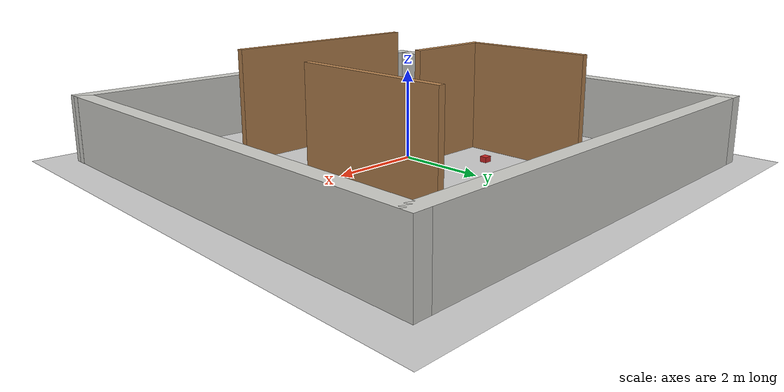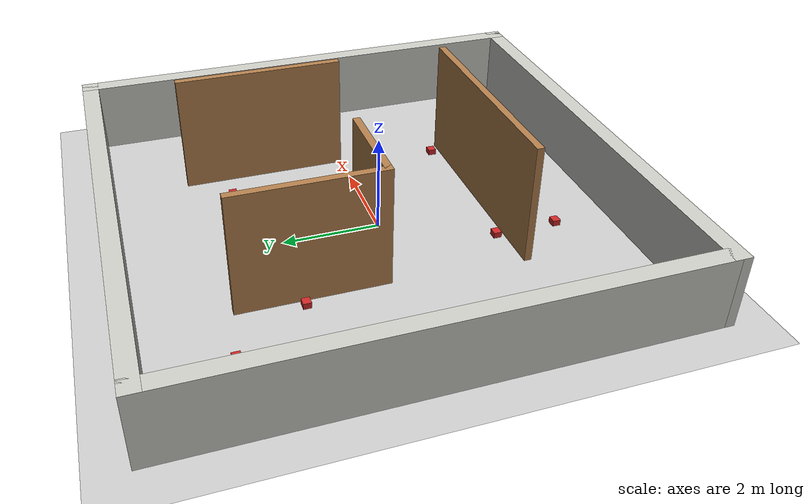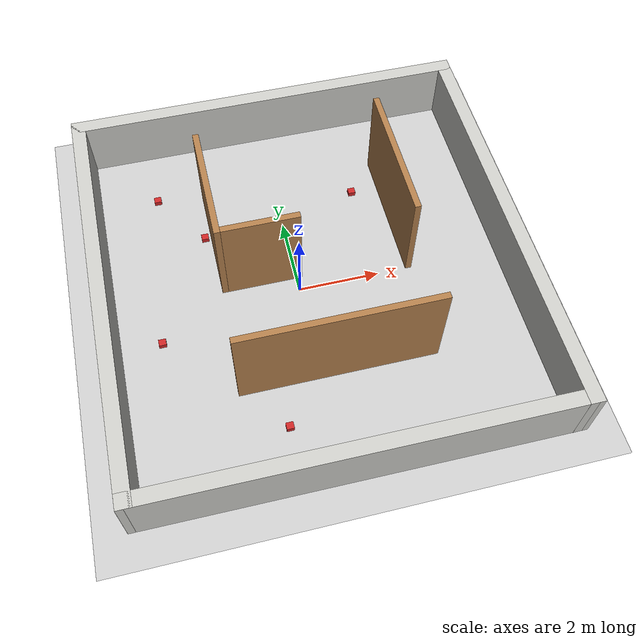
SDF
<sdf version="1.7">
 <world name="default">
  <light name="sun" type="directional">
   <cast_shadows>0</cast_shadows>
   <pose>0 0 10 0 -0 0</pose>
   <diffuse>0.8 0.8 0.8 1</diffuse>
   <specular>0.2 0.2 0.2 1</specular>
   <attenuation>
    <range>1000</range>
    <constant>0.9</constant>
    <linear>0.01</linear>
    <quadratic>0.001</quadratic>
   </attenuation>
   <direction>-0.5 0.1 -0.9</direction>
   <spot><inner_angle>0</inner_angle><outer_angle>0</outer_angle><falloff>0</falloff></spot>
  </light>
  <model name="ground_plane">
   <static>1</static>
   <link name="link">
    <collision name="collision">
     <geometry><plane><normal>0 0 1</normal><size>100 100</size></plane></geometry>
     <surface><friction><ode><mu>100</mu><mu2>50</mu2></ode></friction></surface>
    </collision>
    <visual name="visual">
     <cast_shadows>0</cast_shadows>
     <geometry><plane><normal>0 0 1</normal><size>100 100</size></plane></geometry>
     <material>
      <script><uri>file://media/materials/scripts/gazebo.material</uri><name>Gazebo/Grey</name></script>
     </material>
    </visual>
   </link>
  </model>
  <gravity>0 0 -9.8</gravity>
  <scene><ambient>0.4 0.4 0.4 1</ambient><background>0.7 0.7 0.7 1</background><shadows>1</shadows></scene>
  <magnetic_field>6e-06 2.3e-05 -4.2e-05</magnetic_field>
  <atmosphere type="adiabatic"/>
  <physics type="ode">
   <max_step_size>0.001</max_step_size>
   <real_time_factor>1</real_time_factor>
   <real_time_update_rate>1000</real_time_update_rate>
  </physics>
  <audio><device>default</device></audio>
  <spherical_coordinates>
   <surface_model>EARTH_WGS84</surface_model>
   <latitude_deg>0</latitude_deg>
   <longitude_deg>0</longitude_deg>
   <elevation>0</elevation>
   <heading_deg>0</heading_deg>
  </spherical_coordinates>
  <model name="unit_box_1_clone_0">
   <link name="link">
    <inertial>
     <mass>1</mass>
     <inertia>
      <ixx>0.166667</ixx>
      <ixy>0</ixy>
      <ixz>0</ixz>
      <iyy>0.166667</iyy>
      <iyz>0</iyz>
      <izz>0.166667</izz>
     </inertia>
    </inertial>
    <visual name="visual">
     <geometry><box><size>0.177426 0.164052 0.124949</size></box></geometry>
     <material>
      <script><name>Gazebo/Red</name><uri>file://media/materials/scripts/gazebo.material</uri></script>
      <shader type="pixel"><normal_map>__default__</normal_map></shader>
      <ambient>1 0 0 1</ambient>
      <diffuse>1 0 0 1</diffuse>
      <specular>0.1 0.1 0.1 1</specular>
      <emissive>0 0 0 1</emissive>
     </material>
    </visual>
    <collision name="collision">
     <geometry><box><size>0.177426 0.164052 0.124949</size></box></geometry>
     <surface>
      <friction>
       <ode><mu>1</mu><mu2>1</mu2><fdir1>0 0 0</fdir1><slip1>0</slip1><slip2>0</slip2></ode>
       <torsional>
        <coefficient>1</coefficient>
        <patch_radius>0</patch_radius>
        <surface_radius>0</surface_radius>
        <use_patch_radius>1</use_patch_radius>
        <ode><slip>0</slip></ode>
       </torsional>
      </friction>
      <bounce><restitution_coefficient>0</restitution_coefficient><threshold>1e+06</threshold></bounce>
      <contact>
       <collide_without_contact>0</collide_without_contact>
       <collide_without_contact_bitmask>1</collide_without_contact_bitmask>
       <collide_bitmask>1</collide_bitmask>
       <ode>
        <soft_cfm>0</soft_cfm>
        <soft_erp>0.2</soft_erp>
        <kp>1e+13</kp>
        <kd>1</kd>
        <max_vel>0.01</max_vel>
        <min_depth>0</min_depth>
       </ode>
       <bullet>
        <split_impulse>1</split_impulse>
        <split_impulse_penetration_threshold>-0.01</split_impulse_penetration_threshold>
        <soft_cfm>0</soft_cfm>
        <soft_erp>0.2</soft_erp>
        <kp>1e+13</kp>
        <kd>1</kd>
       </bullet>
      </contact>
     </surface>
    </collision>
   </link>
   <static>0</static>
   <pose>-0.975202 1.46797 0.062474 -2e-06 3e-06 -7e-06</pose>
  </model>
  <model name="unit_box_1">
   <link name="link">
    <inertial>
     <mass>1</mass>
     <inertia>
      <ixx>0.166667</ixx>
      <ixy>0</ixy>
      <ixz>0</ixz>
      <iyy>0.166667</iyy>
      <iyz>0</iyz>
      <izz>0.166667</izz>
     </inertia>
    </inertial>
    <visual name="visual">
     <geometry><box><size>0.177426 0.164052 0.124949</size></box></geometry>
     <material>
      <script><name>Gazebo/Red</name><uri>file://media/materials/scripts/gazebo.material</uri></script>
      <shader type="pixel"><normal_map>__default__</normal_map></shader>
      <ambient>0 1 0 1</ambient>
      <diffuse>0 1 0 1</diffuse>
      <specular>0.1 0.1 0.1 1</specular>
      <emissive>0 0 0 1</emissive>
     </material>
    </visual>
    <collision name="collision">
     <geometry><box><size>0.177426 0.164052 0.124949</size></box></geometry>
     <surface>
      <friction>
       <ode><mu>1</mu><mu2>1</mu2><fdir1>0 0 0</fdir1><slip1>0</slip1><slip2>0</slip2></ode>
       <torsional>
        <coefficient>1</coefficient>
        <patch_radius>0</patch_radius>
        <surface_radius>0</surface_radius>
        <use_patch_radius>1</use_patch_radius>
        <ode><slip>0</slip></ode>
       </torsional>
      </friction>
      <bounce><restitution_coefficient>0</restitution_coefficient><threshold>1e+06</threshold></bounce>
      <contact>
       <collide_without_contact>0</collide_without_contact>
       <collide_without_contact_bitmask>1</collide_without_contact_bitmask>
       <collide_bitmask>1</collide_bitmask>
       <ode>
        <soft_cfm>0</soft_cfm>
        <soft_erp>0.2</soft_erp>
        <kp>1e+13</kp>
        <kd>1</kd>
        <max_vel>0.01</max_vel>
        <min_depth>0</min_depth>
       </ode>
       <bullet>
        <split_impulse>1</split_impulse>
        <split_impulse_penetration_threshold>-0.01</split_impulse_penetration_threshold>
        <soft_cfm>0</soft_cfm>
        <soft_erp>0.2</soft_erp>
        <kp>1e+13</kp>
        <kd>1</kd>
       </bullet>
      </contact>
     </surface>
    </collision>
   </link>
   <static>0</static>
   <pose>-1.05333 -2.16164 0.062475 -4e-06 -1e-06 -2e-06</pose>
  </model>
  <model name="unit_box_1_clone_1_clone">
   <link name="link">
    <inertial>
     <mass>1</mass>
     <inertia>
      <ixx>0.166667</ixx>
      <ixy>0</ixy>
      <ixz>0</ixz>
      <iyy>0.166667</iyy>
      <iyz>0</iyz>
      <izz>0.166667</izz>
     </inertia>
    </inertial>
    <visual name="visual">
     <geometry><box><size>0.177426 0.164052 0.124949</size></box></geometry>
     <material>
      <script><name>Gazebo/Red</name><uri>file://media/materials/scripts/gazebo.material</uri></script>
      <shader type="pixel"><normal_map>__default__</normal_map></shader>
      <ambient>1 0 0 1</ambient>
      <diffuse>1 0 0 1</diffuse>
      <specular>0.1 0.1 0.1 1</specular>
      <emissive>0 0 0 1</emissive>
     </material>
    </visual>
    <collision name="collision">
     <geometry><box><size>0.177426 0.164052 0.124949</size></box></geometry>
     <surface>
      <friction>
       <ode><mu>1</mu><mu2>1</mu2><fdir1>0 0 0</fdir1><slip1>0</slip1><slip2>0</slip2></ode>
       <torsional>
        <coefficient>1</coefficient>
        <patch_radius>0</patch_radius>
        <surface_radius>0</surface_radius>
        <use_patch_radius>1</use_patch_radius>
        <ode><slip>0</slip></ode>
       </torsional>
      </friction>
      <bounce><restitution_coefficient>0</restitution_coefficient><threshold>1e+06</threshold></bounce>
      <contact>
       <collide_without_contact>0</collide_without_contact>
       <collide_without_contact_bitmask>1</collide_without_contact_bitmask>
       <collide_bitmask>1</collide_bitmask>
       <ode>
        <soft_cfm>0</soft_cfm>
        <soft_erp>0.2</soft_erp>
        <kp>1e+13</kp>
        <kd>1</kd>
        <max_vel>0.01</max_vel>
        <min_depth>0</min_depth>
       </ode>
       <bullet>
        <split_impulse>1</split_impulse>
        <split_impulse_penetration_threshold>-0.01</split_impulse_penetration_threshold>
        <soft_cfm>0</soft_cfm>
        <soft_erp>0.2</soft_erp>
        <kp>1e+13</kp>
        <kd>1</kd>
       </bullet>
      </contact>
     </surface>
    </collision>
   </link>
   <static>0</static>
   <pose>-3.49916 -0.751851 0.062475 -4e-06 -0 0.003677</pose>
  </model>
  <model name="unit_box_1_clone_1_clone_0">
   <link name="link">
    <inertial>
     <mass>1</mass>
     <inertia>
      <ixx>0.166667</ixx>
      <ixy>0</ixy>
      <ixz>0</ixz>
      <iyy>0.166667</iyy>
      <iyz>0</iyz>
      <izz>0.166667</izz>
     </inertia>
    </inertial>
    <visual name="visual">
     <geometry><box><size>0.177426 0.164052 0.124949</size></box></geometry>
     <material>
      <script><name>Gazebo/Red</name><uri>file://media/materials/scripts/gazebo.material</uri></script>
      <shader type="pixel"><normal_map>__default__</normal_map></shader>
      <ambient>1 0 0 1</ambient>
      <diffuse>1 0 0 1</diffuse>
      <specular>0.1 0.1 0.1 1</specular>
      <emissive>0 0 0 1</emissive>
     </material>
    </visual>
    <collision name="collision">
     <geometry><box><size>0.177426 0.164052 0.124949</size></box></geometry>
     <surface>
      <friction>
       <ode><mu>1</mu><mu2>1</mu2><fdir1>0 0 0</fdir1><slip1>0</slip1><slip2>0</slip2></ode>
       <torsional>
        <coefficient>1</coefficient>
        <patch_radius>0</patch_radius>
        <surface_radius>0</surface_radius>
        <use_patch_radius>1</use_patch_radius>
        <ode><slip>0</slip></ode>
       </torsional>
      </friction>
      <bounce><restitution_coefficient>0</restitution_coefficient><threshold>1e+06</threshold></bounce>
      <contact>
       <collide_without_contact>0</collide_without_contact>
       <collide_without_contact_bitmask>1</collide_without_contact_bitmask>
       <collide_bitmask>1</collide_bitmask>
       <ode>
        <soft_cfm>0</soft_cfm>
        <soft_erp>0.2</soft_erp>
        <kp>1e+13</kp>
        <kd>1</kd>
        <max_vel>0.01</max_vel>
        <min_depth>0</min_depth>
       </ode>
       <bullet>
        <split_impulse>1</split_impulse>
        <split_impulse_penetration_threshold>-0.01</split_impulse_penetration_threshold>
        <soft_cfm>0</soft_cfm>
        <soft_erp>0.2</soft_erp>
        <kp>1e+13</kp>
        <kd>1</kd>
       </bullet>
      </contact>
     </surface>
    </collision>
   </link>
   <static>0</static>
   <pose>3.55942 2.01655 0.062474 3e-06 -3e-06 -1.8e-05</pose>
  </model>
  <model name="Green1">
   <link name="link">
    <inertial>
     <mass>1</mass>
     <inertia>
      <ixx>0.166667</ixx>
      <ixy>0</ixy>
      <ixz>0</ixz>
      <iyy>0.166667</iyy>
      <iyz>0</iyz>
      <izz>0.166667</izz>
     </inertia>
    </inertial>
    <visual name="visual">
     <geometry><box><size>0.177426 0.164052 0.124949</size></box></geometry>
     <material>
      <script><name>Gazebo/Red</name><uri>file://media/materials/scripts/gazebo.material</uri></script>
      <shader type="pixel"><normal_map>__default__</normal_map></shader>
      <ambient>0 1 0 1</ambient>
      <diffuse>0 1 0 1</diffuse>
      <specular>0.1 0.1 0.1 1</specular>
      <emissive>0 0 0 1</emissive>
     </material>
    </visual>
    <collision name="collision">
     <geometry><box><size>0.177426 0.164052 0.124949</size></box></geometry>
     <surface>
      <friction>
       <ode><mu>1</mu><mu2>1</mu2><fdir1>0 0 0</fdir1><slip1>0</slip1><slip2>0</slip2></ode>
       <torsional>
        <coefficient>1</coefficient>
        <patch_radius>0</patch_radius>
        <surface_radius>0</surface_radius>
        <use_patch_radius>1</use_patch_radius>
        <ode><slip>0</slip></ode>
       </torsional>
      </friction>
      <bounce><restitution_coefficient>0</restitution_coefficient><threshold>1e+06</threshold></bounce>
      <contact>
       <collide_without_contact>0</collide_without_contact>
       <collide_without_contact_bitmask>1</collide_without_contact_bitmask>
       <collide_bitmask>1</collide_bitmask>
       <ode>
        <soft_cfm>0</soft_cfm>
        <soft_erp>0.2</soft_erp>
        <kp>1e+13</kp>
        <kd>1</kd>
        <max_vel>0.01</max_vel>
        <min_depth>0</min_depth>
       </ode>
       <bullet>
        <split_impulse>1</split_impulse>
        <split_impulse_penetration_threshold>-0.01</split_impulse_penetration_threshold>
        <soft_cfm>0</soft_cfm>
        <soft_erp>0.2</soft_erp>
        <kp>1e+13</kp>
        <kd>1</kd>
       </bullet>
      </contact>
     </surface>
    </collision>
   </link>
   <static>0</static>
   <pose>2.00941 2.62639 0.062474 2e-06 4e-06 2e-06</pose>
  </model>
  <model name="blue_box">
   <link name="link">
    <inertial>
     <mass>1</mass>
     <inertia>
      <ixx>0.166667</ixx>
      <ixy>0</ixy>
      <ixz>0</ixz>
      <iyy>0.166667</iyy>
      <iyz>0</iyz>
      <izz>0.166667</izz>
     </inertia>
    </inertial>
    <visual name="visual">
     <geometry><box><size>0.177426 0.164052 0.124949</size></box></geometry>
     <material>
      <script><name>Gazebo/Red</name><uri>file://media/materials/scripts/gazebo.material</uri></script>
      <shader type="pixel"><normal_map>__default__</normal_map></shader>
      <ambient>0 0 1 1</ambient>
      <diffuse>0 0 1 1</diffuse>
      <specular>0.1 0.1 0.1 1</specular>
      <emissive>0 0 0 1</emissive>
     </material>
    </visual>
    <collision name="collision">
     <geometry><box><size>0.177426 0.164052 0.124949</size></box></geometry>
     <surface>
      <friction>
       <ode><mu>1</mu><mu2>1</mu2><fdir1>0 0 0</fdir1><slip1>0</slip1><slip2>0</slip2></ode>
       <torsional>
        <coefficient>1</coefficient>
        <patch_radius>0</patch_radius>
        <surface_radius>0</surface_radius>
        <use_patch_radius>1</use_patch_radius>
        <ode><slip>0</slip></ode>
       </torsional>
      </friction>
      <bounce><restitution_coefficient>0</restitution_coefficient><threshold>1e+06</threshold></bounce>
      <contact>
       <collide_without_contact>0</collide_without_contact>
       <collide_without_contact_bitmask>1</collide_without_contact_bitmask>
       <collide_bitmask>1</collide_bitmask>
       <ode>
        <soft_cfm>0</soft_cfm>
        <soft_erp>0.2</soft_erp>
        <kp>1e+13</kp>
        <kd>1</kd>
        <max_vel>0.01</max_vel>
        <min_depth>0</min_depth>
       </ode>
       <bullet>
        <split_impulse>1</split_impulse>
        <split_impulse_penetration_threshold>-0.01</split_impulse_penetration_threshold>
        <soft_cfm>0</soft_cfm>
        <soft_erp>0.2</soft_erp>
        <kp>1e+13</kp>
        <kd>1</kd>
       </bullet>
      </contact>
     </surface>
    </collision>
   </link>
   <static>0</static>
   <pose>-3.02591 3.50357 0.062474 5e-06 1e-06 -1.4e-05</pose>
  </model>
  <model name="Green1_clone">
   <link name="link">
    <inertial>
     <mass>1</mass>
     <inertia>
      <ixx>0.166667</ixx>
      <ixy>0</ixy>
      <ixz>0</ixz>
      <iyy>0.166667</iyy>
      <iyz>0</iyz>
      <izz>0.166667</izz>
     </inertia>
    </inertial>
    <visual name="visual">
     <geometry><box><size>0.177426 0.164052 0.124949</size></box></geometry>
     <material>
      <script><name>Gazebo/Red</name><uri>file://media/materials/scripts/gazebo.material</uri></script>
      <shader type="pixel"><normal_map>__default__</normal_map></shader>
      <ambient>0 1 0 1</ambient>
      <diffuse>0 1 0 1</diffuse>
      <specular>0.1 0.1 0.1 1</specular>
      <emissive>0 0 0 1</emissive>
     </material>
    </visual>
    <collision name="collision">
     <geometry><box><size>0.177426 0.164052 0.124949</size></box></geometry>
     <surface>
      <friction>
       <ode><mu>1</mu><mu2>1</mu2><fdir1>0 0 0</fdir1><slip1>0</slip1><slip2>0</slip2></ode>
       <torsional>
        <coefficient>1</coefficient>
        <patch_radius>0</patch_radius>
        <surface_radius>0</surface_radius>
        <use_patch_radius>1</use_patch_radius>
        <ode><slip>0</slip></ode>
       </torsional>
      </friction>
      <bounce><restitution_coefficient>0</restitution_coefficient><threshold>1e+06</threshold></bounce>
      <contact>
       <collide_without_contact>0</collide_without_contact>
       <collide_without_contact_bitmask>1</collide_without_contact_bitmask>
       <collide_bitmask>1</collide_bitmask>
       <ode>
        <soft_cfm>0</soft_cfm>
        <soft_erp>0.2</soft_erp>
        <kp>1e+13</kp>
        <kd>1</kd>
        <max_vel>0.01</max_vel>
        <min_depth>0</min_depth>
       </ode>
       <bullet>
        <split_impulse>1</split_impulse>
        <split_impulse_penetration_threshold>-0.01</split_impulse_penetration_threshold>
        <soft_cfm>0</soft_cfm>
        <soft_erp>0.2</soft_erp>
        <kp>1e+13</kp>
        <kd>1</kd>
       </bullet>
      </contact>
     </surface>
    </collision>
   </link>
   <static>0</static>
   <pose>-2.01435 2.03828 0.062474 -2e-06 4e-06 -1.7e-05</pose>
  </model>
  <model name="blue_box_clone">
   <link name="link">
    <inertial>
     <mass>1</mass>
     <inertia>
      <ixx>0.166667</ixx>
      <ixy>0</ixy>
      <ixz>0</ixz>
      <iyy>0.166667</iyy>
      <iyz>0</iyz>
      <izz>0.166667</izz>
     </inertia>
    </inertial>
    <visual name="visual">
     <geometry><box><size>0.177426 0.164052 0.124949</size></box></geometry>
     <material>
      <script><name>Gazebo/Red</name><uri>file://media/materials/scripts/gazebo.material</uri></script>
      <shader type="pixel"><normal_map>__default__</normal_map></shader>
      <ambient>0 0 1 1</ambient>
      <diffuse>0 0 1 1</diffuse>
      <specular>0.1 0.1 0.1 1</specular>
      <emissive>0 0 0 1</emissive>
     </material>
    </visual>
    <collision name="collision">
     <geometry><box><size>0.177426 0.164052 0.124949</size></box></geometry>
     <surface>
      <friction>
       <ode><mu>1</mu><mu2>1</mu2><fdir1>0 0 0</fdir1><slip1>0</slip1><slip2>0</slip2></ode>
       <torsional>
        <coefficient>1</coefficient>
        <patch_radius>0</patch_radius>
        <surface_radius>0</surface_radius>
        <use_patch_radius>1</use_patch_radius>
        <ode><slip>0</slip></ode>
       </torsional>
      </friction>
      <bounce><restitution_coefficient>0</restitution_coefficient><threshold>1e+06</threshold></bounce>
      <contact>
       <collide_without_contact>0</collide_without_contact>
       <collide_without_contact_bitmask>1</collide_without_contact_bitmask>
       <collide_bitmask>1</collide_bitmask>
       <ode>
        <soft_cfm>0</soft_cfm>
        <soft_erp>0.2</soft_erp>
        <kp>1e+13</kp>
        <kd>1</kd>
        <max_vel>0.01</max_vel>
        <min_depth>0</min_depth>
       </ode>
       <bullet>
        <split_impulse>1</split_impulse>
        <split_impulse_penetration_threshold>-0.01</split_impulse_penetration_threshold>
        <soft_cfm>0</soft_cfm>
        <soft_erp>0.2</soft_erp>
        <kp>1e+13</kp>
        <kd>1</kd>
       </bullet>
      </contact>
     </surface>
    </collision>
   </link>
   <static>0</static>
   <pose>-1.03462 -3.49041 0.062475 -1e-06 -3e-06 -0.000131</pose>
  </model>
  <model name="blue_box_clone_0">
   <link name="link">
    <inertial>
     <mass>1</mass>
     <inertia>
      <ixx>0.166667</ixx>
      <ixy>0</ixy>
      <ixz>0</ixz>
      <iyy>0.166667</iyy>
      <iyz>0</iyz>
      <izz>0.166667</izz>
     </inertia>
    </inertial>
    <visual name="visual">
     <geometry><box><size>0.177426 0.164052 0.124949</size></box></geometry>
     <material>
      <script><name>Gazebo/Red</name><uri>file://media/materials/scripts/gazebo.material</uri></script>
      <shader type="pixel"><normal_map>__default__</normal_map></shader>
      <ambient>0 0 1 1</ambient>
      <diffuse>0 0 1 1</diffuse>
      <specular>0.1 0.1 0.1 1</specular>
      <emissive>0 0 0 1</emissive>
     </material>
    </visual>
    <collision name="collision">
     <geometry><box><size>0.177426 0.164052 0.124949</size></box></geometry>
     <surface>
      <friction>
       <ode><mu>1</mu><mu2>1</mu2><fdir1>0 0 0</fdir1><slip1>0</slip1><slip2>0</slip2></ode>
       <torsional>
        <coefficient>1</coefficient>
        <patch_radius>0</patch_radius>
        <surface_radius>0</surface_radius>
        <use_patch_radius>1</use_patch_radius>
        <ode><slip>0</slip></ode>
       </torsional>
      </friction>
      <bounce><restitution_coefficient>0</restitution_coefficient><threshold>1e+06</threshold></bounce>
      <contact>
       <collide_without_contact>0</collide_without_contact>
       <collide_without_contact_bitmask>1</collide_without_contact_bitmask>
       <collide_bitmask>1</collide_bitmask>
       <ode>
        <soft_cfm>0</soft_cfm>
        <soft_erp>0.2</soft_erp>
        <kp>1e+13</kp>
        <kd>1</kd>
        <max_vel>0.01</max_vel>
        <min_depth>0</min_depth>
       </ode>
       <bullet>
        <split_impulse>1</split_impulse>
        <split_impulse_penetration_threshold>-0.01</split_impulse_penetration_threshold>
        <soft_cfm>0</soft_cfm>
        <soft_erp>0.2</soft_erp>
        <kp>1e+13</kp>
        <kd>1</kd>
       </bullet>
      </contact>
     </surface>
    </collision>
   </link>
   <static>0</static>
   <pose>2.44647 -2.11855 0.062475 3e-06 1e-06 -8e-06</pose>
  </model>
  <model name="build_2">
   <pose>0.286 0.16457 0 0 -0 0</pose>
   <link name="Wall_15">
    <collision name="Wall_15_Collision">
     <geometry><box><size>3 0.15 2.5</size></box></geometry>
     <pose>0 0 1.25 0 -0 0</pose>
    </collision>
    <visual name="Wall_15_Visual">
     <pose>0 0 1.25 0 -0 0</pose>
     <geometry><box><size>3 0.15 2.5</size></box></geometry>
     <material>
      <script><uri>file://media/materials/scripts/gazebo.material</uri><name>Gazebo/Wood</name></script>
      <ambient>1 1 1 1</ambient>
     </material>
     <meta><layer>0</layer></meta>
    </visual>
    <pose>-2.077 1.67643 0 0 -0 -1.5708</pose>
   </link>
   <link name="Wall_16">
    <collision name="Wall_16_Collision">
     <geometry><box><size>2 0.15 2.5</size></box></geometry>
     <pose>0 0 1.25 0 -0 0</pose>
    </collision>
    <visual name="Wall_16_Visual">
     <pose>0 0 1.25 0 -0 0</pose>
     <geometry><box><size>2 0.15 2.5</size></box></geometry>
     <material>
      <script><uri>file://media/materials/scripts/gazebo.material</uri><name>Gazebo/Wood</name></script>
      <ambient>1 1 1 1</ambient>
     </material>
     <meta><layer>0</layer></meta>
    </visual>
    <pose>-1.152 0.251434 0 0 -0 0</pose>
   </link>
   <link name="Wall_18">
    <collision name="Wall_18_Collision">
     <geometry><box><size>4.75 0.15 2.5</size></box></geometry>
     <pose>0 0 1.25 0 -0 0</pose>
    </collision>
    <visual name="Wall_18_Visual">
     <pose>0 0 1.25 0 -0 0</pose>
     <geometry><box><size>4.75 0.15 2.5</size></box></geometry>
     <material>
      <script><uri>file://media/materials/scripts/gazebo.material</uri><name>Gazebo/Wood</name></script>
      <ambient>1 1 1 1</ambient>
     </material>
     <meta><layer>0</layer></meta>
    </visual>
    <pose>0.09 -2.56457 0 0 -0 0</pose>
   </link>
   <link name="Wall_20">
    <collision name="Wall_20_Collision">
     <geometry><box><size>3.5 0.15 2.5</size></box></geometry>
     <pose>0 0 1.25 0 -0 0</pose>
    </collision>
    <visual name="Wall_20_Visual">
     <pose>0 0 1.25 0 -0 0</pose>
     <geometry><box><size>3.5 0.15 2.5</size></box></geometry>
     <material>
      <script><uri>file://media/materials/scripts/gazebo.material</uri><name>Gazebo/Wood</name></script>
      <ambient>1 1 1 1</ambient>
     </material>
     <meta><layer>0</layer></meta>
    </visual>
    <pose>2.498 1.58543 0 0 -0 -1.5708</pose>
   </link>
   <link name="Wall_5">
    <collision name="Wall_5_Collision">
     <geometry><box><size>10.2296 0.35 1.5</size></box></geometry>
     <pose>0 0 0.75 0 -0 0</pose>
    </collision>
    <visual name="Wall_5_Visual">
     <pose>0 0 0.75 0 -0 0</pose>
     <geometry><box><size>10.2296 0.35 1.5</size></box></geometry>
     <material>
      <script><uri>file://media/materials/scripts/gazebo.material</uri><name>Gazebo/CeilingTiled</name></script>
      <ambient>1 1 1 1</ambient>
     </material>
     <meta><layer>0</layer></meta>
    </visual>
    <pose>0 5.05543 0 0 -0 0</pose>
   </link>
   <link name="Wall_6">
    <collision name="Wall_6_Collision">
     <geometry><box><size>10.4604 0.35 1.5</size></box></geometry>
     <pose>0 0 0.75 0 -0 0</pose>
    </collision>
    <visual name="Wall_6_Visual">
     <pose>0 0 0.75 0 -0 0</pose>
     <geometry><box><size>10.4604 0.35 1.5</size></box></geometry>
     <material>
      <script><uri>file://media/materials/scripts/gazebo.material</uri><name>Gazebo/CeilingTiled</name></script>
      <ambient>1 1 1 1</ambient>
     </material>
     <meta><layer>0</layer></meta>
    </visual>
    <pose>4.94 0.000434 0 0 -0 -1.5708</pose>
   </link>
   <link name="Wall_7">
    <collision name="Wall_7_Collision">
     <geometry><box><size>10.2304 0.35 1.5</size></box></geometry>
     <pose>0 0 0.75 0 -0 0</pose>
    </collision>
    <visual name="Wall_7_Visual">
     <pose>0 0 0.75 0 -0 0</pose>
     <geometry><box><size>10.2304 0.35 1.5</size></box></geometry>
     <material>
      <script><uri>file://media/materials/scripts/gazebo.material</uri><name>Gazebo/CeilingTiled</name></script>
      <ambient>1 1 1 1</ambient>
     </material>
     <meta><layer>0</layer></meta>
    </visual>
    <pose>0 -5.02407 0 0 -0 3.13542</pose>
   </link>
   <link name="Wall_8">
    <collision name="Wall_8_Collision">
     <geometry><box><size>10.399 0.35 1.5</size></box></geometry>
     <pose>0 0 0.75 0 -0 0</pose>
    </collision>
    <visual name="Wall_8_Visual">
     <pose>0 0 0.75 0 -0 0</pose>
     <geometry><box><size>10.399 0.35 1.5</size></box></geometry>
     <material>
      <script><uri>file://media/materials/scripts/gazebo.material</uri><name>Gazebo/CeilingTiled</name></script>
      <ambient>1 1 1 1</ambient>
     </material>
     <meta><layer>0</layer></meta>
    </visual>
    <pose>-4.94 0.030934 0 0 -0 1.5708</pose>
   </link>
   <static>1</static>
  </model>
 </world>
</sdf>
